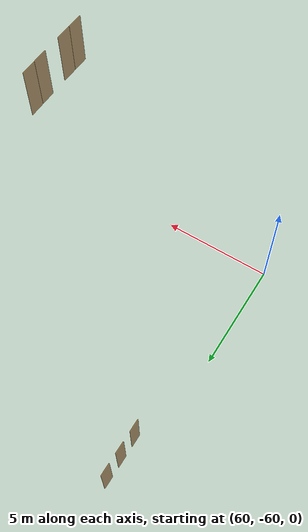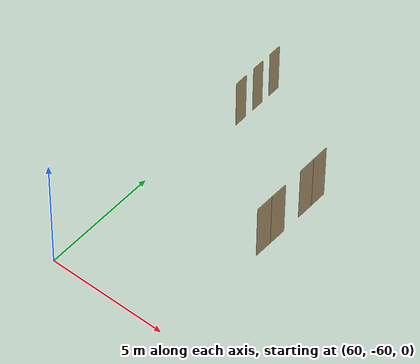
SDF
<sdf version="1.7">
 <world name="sim_world">
  <model name="bano08">
   <pose>60.78976126052451 -48.53715217578514 0.0 0 0 1.5717737241623335</pose>
   <link name="right">
    <pose>0 0 1.11 0 0 0</pose>
    <visual name="right_visual">
     <geometry><box><size>0.5411345257741597 0.03 2.2</size></box></geometry>
     <material>
      <ambient>0.5 0.25 0 0.6</ambient>
      <diffuse>0.5 0.25 0 0.6</diffuse>
      <pbr><metal><metalness>0.0</metalness></metal></pbr>
     </material>
    </visual>
    <collision name="right_collision">
     <geometry><box><size>0.5411345257741597 0.03 2.2</size></box></geometry>
     <surface><contact><collide_bitmask>0x02</collide_bitmask></contact></surface>
    </collision>
    <inertial>
     <mass>50.0</mass>
     <inertia><ixx>20.17041666666667</ixx><iyy>21.386777395770107</iyy><izz>1.2238607291034362</izz></inertia>
    </inertial>
   </link>
   <joint name="right_joint" type="revolute">
    <parent>world</parent>
    <child>right</child>
    <axis><xyz>0 0 1</xyz><limit><lower>0</lower><upper>1.57</upper></limit></axis>
    <pose>0.27556726288707983 0 0 0 0 0</pose>
   </joint>
   <plugin name="register_component" filename="libregister_component.so">
    <component name="Door">
     <v_max_door>0.5</v_max_door>
     <a_max_door>0.3</a_max_door>
     <a_nom_door>0.15</a_nom_door>
     <dx_min_door>0.01</dx_min_door>
     <f_max_door>500.0</f_max_door>
     <ros_interface>true</ros_interface>
     <door name="bano08" type="SwingDoor" left_joint_name="empty_joint" right_joint_name="right_joint"/>
    </component>
   </plugin>
  </model>
  <model name="bano09">
   <pose>60.79003059919892 -49.49870246589414 0.0 0 0 1.5707963267948966</pose>
   <link name="right">
    <pose>0 0 1.11 0 0 0</pose>
    <visual name="right_visual">
     <geometry><box><size>0.5286773488315057 0.03 2.2</size></box></geometry>
     <material>
      <ambient>0.5 0.25 0 0.6</ambient>
      <diffuse>0.5 0.25 0 0.6</diffuse>
      <pbr><metal><metalness>0.0</metalness></metal></pbr>
     </material>
    </visual>
    <collision name="right_collision">
     <geometry><box><size>0.5286773488315057 0.03 2.2</size></box></geometry>
     <surface><contact><collide_bitmask>0x02</collide_bitmask></contact></surface>
    </collision>
    <inertial>
     <mass>50.0</mass>
     <inertia><ixx>20.17041666666667</ixx><iyy>21.331248913197964</iyy><izz>1.16833224653129</izz></inertia>
    </inertial>
   </link>
   <joint name="right_joint" type="revolute">
    <parent>world</parent>
    <child>right</child>
    <axis><xyz>0 0 1</xyz><limit><lower>0</lower><upper>1.57</upper></limit></axis>
    <pose>0.2693386744157529 0 0 0 0 0</pose>
   </joint>
   <plugin name="register_component" filename="libregister_component.so">
    <component name="Door">
     <v_max_door>0.5</v_max_door>
     <a_max_door>0.3</a_max_door>
     <a_nom_door>0.15</a_nom_door>
     <dx_min_door>0.01</dx_min_door>
     <f_max_door>500.0</f_max_door>
     <ros_interface>true</ros_interface>
     <door name="bano09" type="SwingDoor" left_joint_name="empty_joint" right_joint_name="right_joint"/>
    </component>
   </plugin>
  </model>
  <model name="bano010">
   <pose>60.79214041881518 -50.483516884005795 0.0 0 0 1.5782784764305897</pose>
   <link name="right">
    <pose>0 0 1.11 0 0 0</pose>
    <visual name="right_visual">
     <geometry><box><size>0.553966080507234 0.03 2.2</size></box></geometry>
     <material>
      <ambient>0.5 0.25 0 0.6</ambient>
      <diffuse>0.5 0.25 0 0.6</diffuse>
      <pbr><metal><metalness>0.0</metalness></metal></pbr>
     </material>
    </visual>
    <collision name="right_collision">
     <geometry><box><size>0.553966080507234 0.03 2.2</size></box></geometry>
     <surface><contact><collide_bitmask>0x02</collide_bitmask></contact></surface>
    </collision>
    <inertial>
     <mass>50.0</mass>
     <inertia><ixx>20.17041666666667</ixx><iyy>21.44532674313562</iyy><izz>1.2824100764689468</izz></inertia>
    </inertial>
   </link>
   <joint name="right_joint" type="revolute">
    <parent>world</parent>
    <child>right</child>
    <axis><xyz>0 0 1</xyz><limit><lower>0</lower><upper>1.57</upper></limit></axis>
    <pose>0.281983040253617 0 0 0 0 0</pose>
   </joint>
   <plugin name="register_component" filename="libregister_component.so">
    <component name="Door">
     <v_max_door>0.5</v_max_door>
     <a_max_door>0.3</a_max_door>
     <a_nom_door>0.15</a_nom_door>
     <dx_min_door>0.01</dx_min_door>
     <f_max_door>500.0</f_max_door>
     <ros_interface>true</ros_interface>
     <door name="bano010" type="SwingDoor" left_joint_name="empty_joint" right_joint_name="right_joint"/>
    </component>
   </plugin>
  </model>
  <model name="TD0120AI">
   <pose>69.458115087851 -57.717003443619944 8.0 0 0 -1.5734051330332963</pose>
   <link name="right">
    <pose>0.3240667100073321 0 1.11 0 0 0</pose>
    <visual name="right_visual">
     <geometry><box><size>0.6381334200146642 0.03 2.2</size></box></geometry>
     <material>
      <ambient>0.5 0.25 0 0.6</ambient>
      <diffuse>0.5 0.25 0 0.6</diffuse>
      <pbr><metal><metalness>0.0</metalness></metal></pbr>
     </material>
    </visual>
    <collision name="right_collision">
     <geometry><box><size>0.6381334200146642 0.03 2.2</size></box></geometry>
     <surface><contact><collide_bitmask>0x02</collide_bitmask></contact></surface>
    </collision>
    <inertial>
     <mass>50.0</mass>
     <inertia><ixx>20.17041666666667</ixx><iyy>21.863392757248388</iyy><izz>1.7004760905817162</izz></inertia>
    </inertial>
   </link>
   <joint name="right_joint" type="revolute">
    <parent>world</parent>
    <child>right</child>
    <axis><xyz>0 0 -1</xyz><limit><lower>0</lower><upper>1.57</upper></limit></axis>
    <pose>0.3240667100073321 0 0 0 0 0</pose>
   </joint>
   <link name="left">
    <pose>-0.3240667100073321 0 1.11 0 0 0</pose>
    <visual name="left_visual">
     <geometry><box><size>0.6381334200146642 0.03 2.2</size></box></geometry>
     <material>
      <ambient>0.5 0.25 0 0.6</ambient>
      <diffuse>0.5 0.25 0 0.6</diffuse>
      <pbr><metal><metalness>0.0</metalness></metal></pbr>
     </material>
    </visual>
    <collision name="left_collision">
     <geometry><box><size>0.6381334200146642 0.03 2.2</size></box></geometry>
     <surface><contact><collide_bitmask>0x02</collide_bitmask></contact></surface>
    </collision>
    <inertial>
     <mass>50.0</mass>
     <inertia><ixx>20.17041666666667</ixx><iyy>21.863392757248388</iyy><izz>1.7004760905817162</izz></inertia>
    </inertial>
   </link>
   <joint name="left_joint" type="revolute">
    <parent>world</parent>
    <child>left</child>
    <axis><xyz>0 0 -1</xyz><limit><lower>-1.57</lower><upper>0</upper></limit></axis>
    <pose>-0.3240667100073321 0 0 0 0 0</pose>
   </joint>
   <plugin name="register_component" filename="libregister_component.so">
    <component name="Door">
     <v_max_door>0.5</v_max_door>
     <a_max_door>0.3</a_max_door>
     <a_nom_door>0.15</a_nom_door>
     <dx_min_door>0.01</dx_min_door>
     <f_max_door>500.0</f_max_door>
     <ros_interface>true</ros_interface>
     <door name="TD0120AI" type="DoubleSwingDoor" left_joint_name="left_joint" right_joint_name="right_joint"/>
    </component>
   </plugin>
  </model>
  <model name="TD0108AI">
   <pose>69.4391617826742 -59.79881454888431 8.0 0 0 -1.585838878532824</pose>
   <link name="right">
    <pose>0.338806890408198 0 1.11 0 0 0</pose>
    <visual name="right_visual">
     <geometry><box><size>0.667613780816396 0.03 2.2</size></box></geometry>
     <material>
      <ambient>0.5 0.25 0 0.6</ambient>
      <diffuse>0.5 0.25 0 0.6</diffuse>
      <pbr><metal><metalness>0.0</metalness></metal></pbr>
     </material>
    </visual>
    <collision name="right_collision">
     <geometry><box><size>0.667613780816396 0.03 2.2</size></box></geometry>
     <surface><contact><collide_bitmask>0x02</collide_bitmask></contact></surface>
    </collision>
    <inertial>
     <mass>50.0</mass>
     <inertia><ixx>20.17041666666667</ixx><iyy>22.02378400139985</iyy><izz>1.8608673347331786</izz></inertia>
    </inertial>
   </link>
   <joint name="right_joint" type="revolute">
    <parent>world</parent>
    <child>right</child>
    <axis><xyz>0 0 -1</xyz><limit><lower>0</lower><upper>1.57</upper></limit></axis>
    <pose>0.338806890408198 0 0 0 0 0</pose>
   </joint>
   <link name="left">
    <pose>-0.338806890408198 0 1.11 0 0 0</pose>
    <visual name="left_visual">
     <geometry><box><size>0.667613780816396 0.03 2.2</size></box></geometry>
     <material>
      <ambient>0.5 0.25 0 0.6</ambient>
      <diffuse>0.5 0.25 0 0.6</diffuse>
      <pbr><metal><metalness>0.0</metalness></metal></pbr>
     </material>
    </visual>
    <collision name="left_collision">
     <geometry><box><size>0.667613780816396 0.03 2.2</size></box></geometry>
     <surface><contact><collide_bitmask>0x02</collide_bitmask></contact></surface>
    </collision>
    <inertial>
     <mass>50.0</mass>
     <inertia><ixx>20.17041666666667</ixx><iyy>22.02378400139985</iyy><izz>1.8608673347331786</izz></inertia>
    </inertial>
   </link>
   <joint name="left_joint" type="revolute">
    <parent>world</parent>
    <child>left</child>
    <axis><xyz>0 0 -1</xyz><limit><lower>-1.57</lower><upper>0</upper></limit></axis>
    <pose>-0.338806890408198 0 0 0 0 0</pose>
   </joint>
   <plugin name="register_component" filename="libregister_component.so">
    <component name="Door">
     <v_max_door>0.5</v_max_door>
     <a_max_door>0.3</a_max_door>
     <a_nom_door>0.15</a_nom_door>
     <dx_min_door>0.01</dx_min_door>
     <f_max_door>500.0</f_max_door>
     <ros_interface>true</ros_interface>
     <door name="TD0108AI" type="DoubleSwingDoor" left_joint_name="left_joint" right_joint_name="right_joint"/>
    </component>
   </plugin>
  </model>
 </world>
</sdf>
